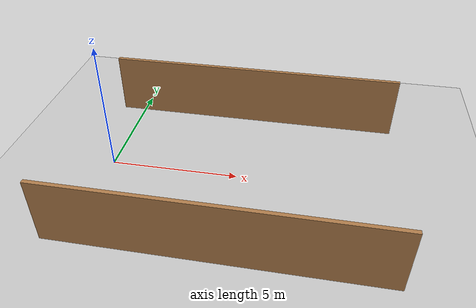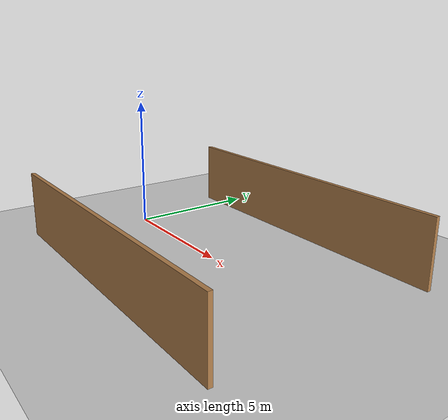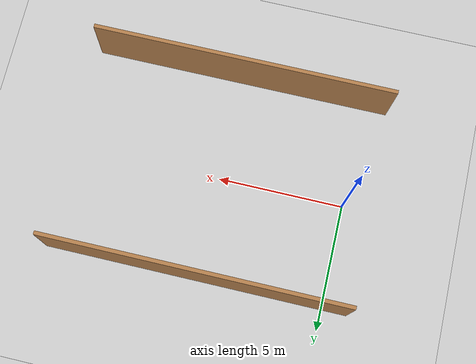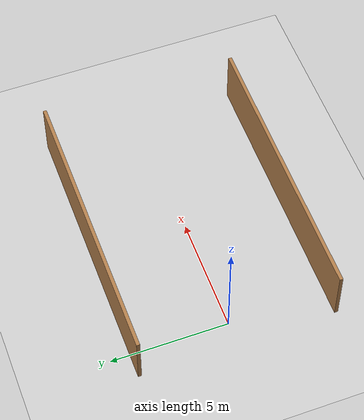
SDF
<sdf version="1.7">
 <world name="default">
  <scene><ambient>0.4 0.4 0.4 1</ambient><background>0.7 0.7 0.7 1</background><shadows>1</shadows></scene>
  <light name="sun" type="directional">
   <pose>0 0 10 0 -0 0</pose>
   <diffuse>0.8 0.8 0.8 1</diffuse>
   <specular>0.2 0.2 0.2 1</specular>
   <attenuation>
    <range>1000</range>
    <constant>0.9</constant>
    <linear>0.01</linear>
    <quadratic>0.001</quadratic>
   </attenuation>
   <direction>-0.5 0.1 -0.9</direction>
   <spot><inner_angle>0</inner_angle><outer_angle>0</outer_angle><falloff>0</falloff></spot>
  </light>
  <model name="ground_plane">
   <static>1</static>
   <link name="link">
    <collision name="collision">
     <geometry><plane><normal>0 0 1</normal><size>100 100</size></plane></geometry>
     <surface><friction><ode><mu>100</mu><mu2>50</mu2></ode></friction></surface>
    </collision>
    <visual name="visual">
     <cast_shadows>0</cast_shadows>
     <geometry><plane><normal>0 0 1</normal><size>100 100</size></plane></geometry>
     <material>
      <script><uri>file://media/materials/scripts/gazebo.material</uri><name>Gazebo/Grey</name></script>
     </material>
    </visual>
   </link>
  </model>
  <physics type="ode">
   <real_time_update_rate>1000</real_time_update_rate>
   <max_step_size>0.001</max_step_size>
   <real_time_factor>1</real_time_factor>
   <ode>
    <solver>
     <type>quick</type>
     <iters>150</iters>
     <precon_iters>0</precon_iters>
     <sor>1.4</sor>
     <use_dynamic_moi_rescaling>1</use_dynamic_moi_rescaling>
    </solver>
    <constraints>
     <cfm>1e-05</cfm>
     <erp>0.2</erp>
     <contact_max_correcting_vel>2000</contact_max_correcting_vel>
     <contact_surface_layer>0.01</contact_surface_layer>
    </constraints>
   </ode>
  </physics>
  <gravity>0 0 -9.8</gravity>
  <magnetic_field>6e-06 2.3e-05 -4.2e-05</magnetic_field>
  <atmosphere type="adiabatic"/>
  <spherical_coordinates>
   <surface_model>EARTH_WGS84</surface_model>
   <latitude_deg>0</latitude_deg>
   <longitude_deg>0</longitude_deg>
   <elevation>0</elevation>
   <heading_deg>0</heading_deg>
  </spherical_coordinates>
  <model name="wall_12m">
   <pose>5 -2.5 0 0 -0 0</pose>
   <link name="Wall_2">
    <collision name="Wall_2_Collision">
     <geometry><box><size>12 0.15 2.5</size></box></geometry>
     <pose>0 0 1.25 0 -0 0</pose>
    </collision>
    <visual name="Wall_2_Visual">
     <pose>0 0 1.25 0 -0 0</pose>
     <geometry><box><size>12 0.15 2.5</size></box></geometry>
     <material>
      <script><uri>file://media/materials/scripts/gazebo.material</uri><name>Gazebo/Wood</name></script>
      <ambient>1 1 1 1</ambient>
     </material>
     <meta><layer>0</layer></meta>
    </visual>
    <pose>0 -1.7825 0 0 -0 0</pose>
   </link>
   <static>1</static>
  </model>
  <model name="wall_12m_clone">
   <pose>5 5.88499 0 0 -0 0</pose>
   <link name="Wall_2">
    <collision name="Wall_2_Collision">
     <geometry><box><size>12 0.15 2.5</size></box></geometry>
     <pose>0 0 1.25 0 -0 0</pose>
    </collision>
    <visual name="Wall_2_Visual">
     <pose>0 0 1.25 0 -0 0</pose>
     <geometry><box><size>12 0.15 2.5</size></box></geometry>
     <material>
      <script><uri>file://media/materials/scripts/gazebo.material</uri><name>Gazebo/Wood</name></script>
      <ambient>1 1 1 1</ambient>
     </material>
     <meta><layer>0</layer></meta>
    </visual>
    <pose>0 -1.7825 0 0 -0 0</pose>
   </link>
   <static>1</static>
  </model>
 </world>
</sdf>
